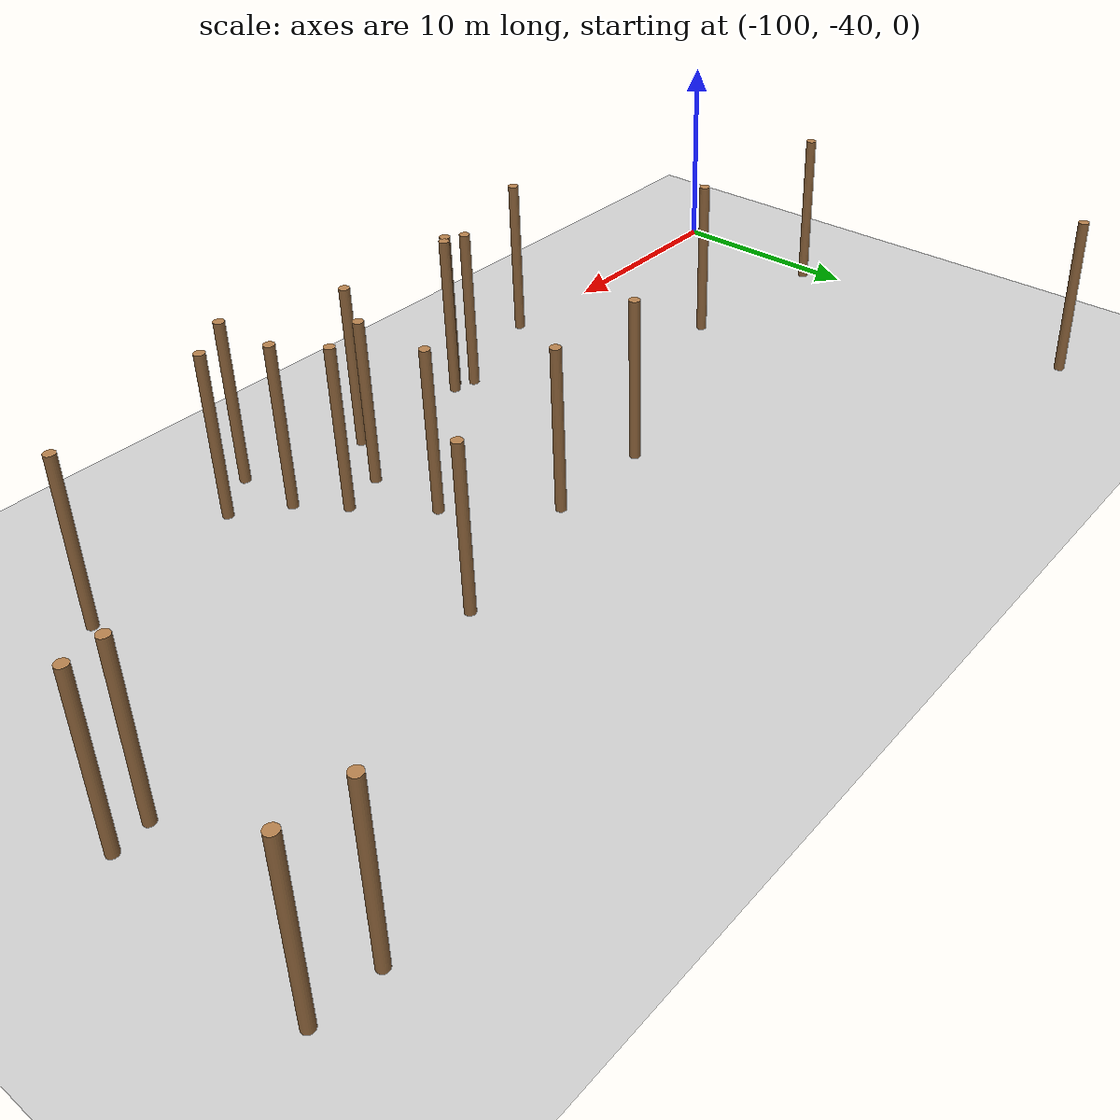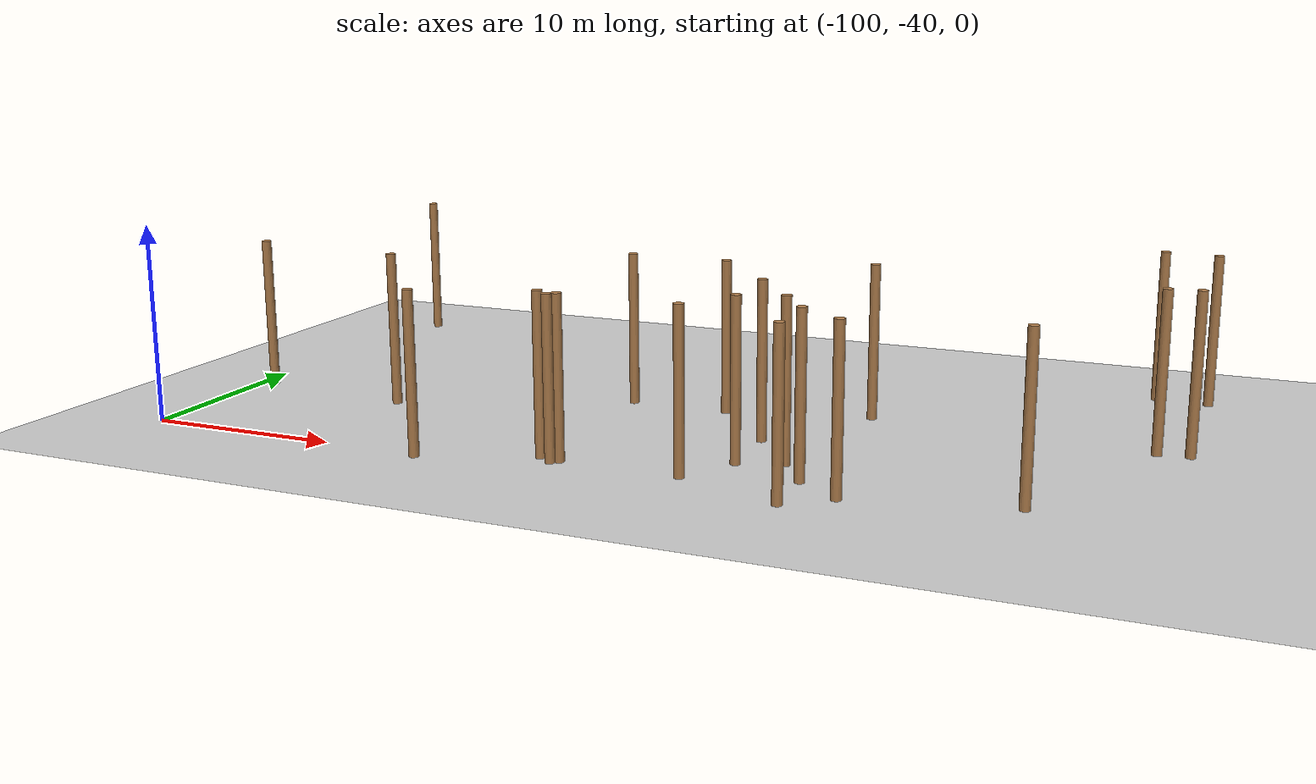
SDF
<sdf version="1.5">
 <world name="padure_tactica">
  <include><uri>model://sun</uri></include>
  <include><uri>model://ground_plane</uri></include>
  <model name="tree_55">
   <static>true</static>
   <pose>-99.30 -31.85 4.0 0 0 0</pose>
   <link name="link">
    <collision name="collision">
     <geometry><cylinder><radius>0.25</radius><length>8.0</length></cylinder></geometry>
    </collision>
    <visual name="visual">
     <geometry><cylinder><radius>0.25</radius><length>8.0</length></cylinder></geometry>
     <material>
      <script><uri>file://media/materials/scripts/gazebo.material</uri><name>Gazebo/Wood</name></script>
     </material>
    </visual>
   </link>
  </model>
  <model name="tree_155">
   <static>true</static>
   <pose>-68.44 -34.90 4.0 0 0 0</pose>
   <link name="link">
    <collision name="collision">
     <geometry><cylinder><radius>0.25</radius><length>8.0</length></cylinder></geometry>
    </collision>
    <visual name="visual">
     <geometry><cylinder><radius>0.25</radius><length>8.0</length></cylinder></geometry>
     <material>
      <script><uri>file://media/materials/scripts/gazebo.material</uri><name>Gazebo/Wood</name></script>
     </material>
    </visual>
   </link>
  </model>
  <model name="tree_169">
   <static>true</static>
   <pose>-79.37 -38.11 4.0 0 0 0</pose>
   <link name="link">
    <collision name="collision">
     <geometry><cylinder><radius>0.25</radius><length>8.0</length></cylinder></geometry>
    </collision>
    <visual name="visual">
     <geometry><cylinder><radius>0.25</radius><length>8.0</length></cylinder></geometry>
     <material>
      <script><uri>file://media/materials/scripts/gazebo.material</uri><name>Gazebo/Wood</name></script>
     </material>
    </visual>
   </link>
  </model>
  <model name="tree_192">
   <static>true</static>
   <pose>-67.05 -36.95 4.0 0 0 0</pose>
   <link name="link">
    <collision name="collision">
     <geometry><cylinder><radius>0.25</radius><length>8.0</length></cylinder></geometry>
    </collision>
    <visual name="visual">
     <geometry><cylinder><radius>0.25</radius><length>8.0</length></cylinder></geometry>
     <material>
      <script><uri>file://media/materials/scripts/gazebo.material</uri><name>Gazebo/Wood</name></script>
     </material>
    </visual>
   </link>
  </model>
  <model name="tree_222">
   <static>true</static>
   <pose>-72.25 -38.35 4.0 0 0 0</pose>
   <link name="link">
    <collision name="collision">
     <geometry><cylinder><radius>0.25</radius><length>8.0</length></cylinder></geometry>
    </collision>
    <visual name="visual">
     <geometry><cylinder><radius>0.25</radius><length>8.0</length></cylinder></geometry>
     <material>
      <script><uri>file://media/materials/scripts/gazebo.material</uri><name>Gazebo/Wood</name></script>
     </material>
    </visual>
   </link>
  </model>
  <model name="tree_248">
   <static>true</static>
   <pose>-98.59 -16.16 4.0 0 0 0</pose>
   <link name="link">
    <collision name="collision">
     <geometry><cylinder><radius>0.25</radius><length>8.0</length></cylinder></geometry>
    </collision>
    <visual name="visual">
     <geometry><cylinder><radius>0.25</radius><length>8.0</length></cylinder></geometry>
     <material>
      <script><uri>file://media/materials/scripts/gazebo.material</uri><name>Gazebo/Wood</name></script>
     </material>
    </visual>
   </link>
  </model>
  <model name="tree_280">
   <static>true</static>
   <pose>-57.14 -36.79 4.0 0 0 0</pose>
   <link name="link">
    <collision name="collision">
     <geometry><cylinder><radius>0.25</radius><length>8.0</length></cylinder></geometry>
    </collision>
    <visual name="visual">
     <geometry><cylinder><radius>0.25</radius><length>8.0</length></cylinder></geometry>
     <material>
      <script><uri>file://media/materials/scripts/gazebo.material</uri><name>Gazebo/Wood</name></script>
     </material>
    </visual>
   </link>
  </model>
  <model name="tree_291">
   <static>true</static>
   <pose>-66.99 -40.11 4.0 0 0 0</pose>
   <link name="link">
    <collision name="collision">
     <geometry><cylinder><radius>0.25</radius><length>8.0</length></cylinder></geometry>
    </collision>
    <visual name="visual">
     <geometry><cylinder><radius>0.25</radius><length>8.0</length></cylinder></geometry>
     <material>
      <script><uri>file://media/materials/scripts/gazebo.material</uri><name>Gazebo/Wood</name></script>
     </material>
    </visual>
   </link>
  </model>
  <model name="tree_327">
   <static>true</static>
   <pose>-70.60 -35.61 4.0 0 0 0</pose>
   <link name="link">
    <collision name="collision">
     <geometry><cylinder><radius>0.25</radius><length>8.0</length></cylinder></geometry>
    </collision>
    <visual name="visual">
     <geometry><cylinder><radius>0.25</radius><length>8.0</length></cylinder></geometry>
     <material>
      <script><uri>file://media/materials/scripts/gazebo.material</uri><name>Gazebo/Wood</name></script>
     </material>
    </visual>
   </link>
  </model>
  <model name="tree_520">
   <static>true</static>
   <pose>-64.86 -38.55 4.0 0 0 0</pose>
   <link name="link">
    <collision name="collision">
     <geometry><cylinder><radius>0.25</radius><length>8.0</length></cylinder></geometry>
    </collision>
    <visual name="visual">
     <geometry><cylinder><radius>0.25</radius><length>8.0</length></cylinder></geometry>
     <material>
      <script><uri>file://media/materials/scripts/gazebo.material</uri><name>Gazebo/Wood</name></script>
     </material>
    </visual>
   </link>
  </model>
  <model name="tree_523">
   <static>true</static>
   <pose>-78.61 -38.63 4.0 0 0 0</pose>
   <link name="link">
    <collision name="collision">
     <geometry><cylinder><radius>0.25</radius><length>8.0</length></cylinder></geometry>
    </collision>
    <visual name="visual">
     <geometry><cylinder><radius>0.25</radius><length>8.0</length></cylinder></geometry>
     <material>
      <script><uri>file://media/materials/scripts/gazebo.material</uri><name>Gazebo/Wood</name></script>
     </material>
    </visual>
   </link>
  </model>
  <model name="tree_568">
   <static>true</static>
   <pose>-66.79 -26.06 4.0 0 0 0</pose>
   <link name="link">
    <collision name="collision">
     <geometry><cylinder><radius>0.25</radius><length>8.0</length></cylinder></geometry>
    </collision>
    <visual name="visual">
     <geometry><cylinder><radius>0.25</radius><length>8.0</length></cylinder></geometry>
     <material>
      <script><uri>file://media/materials/scripts/gazebo.material</uri><name>Gazebo/Wood</name></script>
     </material>
    </visual>
   </link>
  </model>
  <model name="tree_602">
   <static>true</static>
   <pose>-90.81 -32.67 4.0 0 0 0</pose>
   <link name="link">
    <collision name="collision">
     <geometry><cylinder><radius>0.25</radius><length>8.0</length></cylinder></geometry>
    </collision>
    <visual name="visual">
     <geometry><cylinder><radius>0.25</radius><length>8.0</length></cylinder></geometry>
     <material>
      <script><uri>file://media/materials/scripts/gazebo.material</uri><name>Gazebo/Wood</name></script>
     </material>
    </visual>
   </link>
  </model>
  <model name="tree_608">
   <static>true</static>
   <pose>-79.23 -27.86 4.0 0 0 0</pose>
   <link name="link">
    <collision name="collision">
     <geometry><cylinder><radius>0.25</radius><length>8.0</length></cylinder></geometry>
    </collision>
    <visual name="visual">
     <geometry><cylinder><radius>0.25</radius><length>8.0</length></cylinder></geometry>
     <material>
      <script><uri>file://media/materials/scripts/gazebo.material</uri><name>Gazebo/Wood</name></script>
     </material>
    </visual>
   </link>
  </model>
  <model name="tree_621">
   <static>true</static>
   <pose>-51.25 -26.70 4.0 0 0 0</pose>
   <link name="link">
    <collision name="collision">
     <geometry><cylinder><radius>0.25</radius><length>8.0</length></cylinder></geometry>
    </collision>
    <visual name="visual">
     <geometry><cylinder><radius>0.25</radius><length>8.0</length></cylinder></geometry>
     <material>
      <script><uri>file://media/materials/scripts/gazebo.material</uri><name>Gazebo/Wood</name></script>
     </material>
    </visual>
   </link>
  </model>
  <model name="tree_755">
   <static>true</static>
   <pose>-74.08 -27.78 4.0 0 0 0</pose>
   <link name="link">
    <collision name="collision">
     <geometry><cylinder><radius>0.25</radius><length>8.0</length></cylinder></geometry>
    </collision>
    <visual name="visual">
     <geometry><cylinder><radius>0.25</radius><length>8.0</length></cylinder></geometry>
     <material>
      <script><uri>file://media/materials/scripts/gazebo.material</uri><name>Gazebo/Wood</name></script>
     </material>
    </visual>
   </link>
  </model>
  <model name="tree_810">
   <static>true</static>
   <pose>-52.76 -26.88 4.0 0 0 0</pose>
   <link name="link">
    <collision name="collision">
     <geometry><cylinder><radius>0.25</radius><length>8.0</length></cylinder></geometry>
    </collision>
    <visual name="visual">
     <geometry><cylinder><radius>0.25</radius><length>8.0</length></cylinder></geometry>
     <material>
      <script><uri>file://media/materials/scripts/gazebo.material</uri><name>Gazebo/Wood</name></script>
     </material>
    </visual>
   </link>
  </model>
  <model name="tree_833">
   <static>true</static>
   <pose>-53.76 -16.86 4.0 0 0 0</pose>
   <link name="link">
    <collision name="collision">
     <geometry><cylinder><radius>0.25</radius><length>8.0</length></cylinder></geometry>
    </collision>
    <visual name="visual">
     <geometry><cylinder><radius>0.25</radius><length>8.0</length></cylinder></geometry>
     <material>
      <script><uri>file://media/materials/scripts/gazebo.material</uri><name>Gazebo/Wood</name></script>
     </material>
    </visual>
   </link>
  </model>
  <model name="tree_868">
   <static>true</static>
   <pose>-70.70 -31.79 4.0 0 0 0</pose>
   <link name="link">
    <collision name="collision">
     <geometry><cylinder><radius>0.25</radius><length>8.0</length></cylinder></geometry>
    </collision>
    <visual name="visual">
     <geometry><cylinder><radius>0.25</radius><length>8.0</length></cylinder></geometry>
     <material>
      <script><uri>file://media/materials/scripts/gazebo.material</uri><name>Gazebo/Wood</name></script>
     </material>
    </visual>
   </link>
  </model>
  <model name="tree_1160">
   <static>true</static>
   <pose>-84.94 -40.20 4.0 0 0 0</pose>
   <link name="link">
    <collision name="collision">
     <geometry><cylinder><radius>0.25</radius><length>8.0</length></cylinder></geometry>
    </collision>
    <visual name="visual">
     <geometry><cylinder><radius>0.25</radius><length>8.0</length></cylinder></geometry>
     <material>
      <script><uri>file://media/materials/scripts/gazebo.material</uri><name>Gazebo/Wood</name></script>
     </material>
    </visual>
   </link>
  </model>
  <model name="tree_1191">
   <static>true</static>
   <pose>-78.27 -38.34 4.0 0 0 0</pose>
   <link name="link">
    <collision name="collision">
     <geometry><cylinder><radius>0.25</radius><length>8.0</length></cylinder></geometry>
    </collision>
    <visual name="visual">
     <geometry><cylinder><radius>0.25</radius><length>8.0</length></cylinder></geometry>
     <material>
      <script><uri>file://media/materials/scripts/gazebo.material</uri><name>Gazebo/Wood</name></script>
     </material>
    </visual>
   </link>
  </model>
  <model name="tree_1199">
   <static>true</static>
   <pose>-51.10 -17.05 4.0 0 0 0</pose>
   <link name="link">
    <collision name="collision">
     <geometry><cylinder><radius>0.25</radius><length>8.0</length></cylinder></geometry>
    </collision>
    <visual name="visual">
     <geometry><cylinder><radius>0.25</radius><length>8.0</length></cylinder></geometry>
     <material>
      <script><uri>file://media/materials/scripts/gazebo.material</uri><name>Gazebo/Wood</name></script>
     </material>
    </visual>
   </link>
  </model>
 </world>
</sdf>
